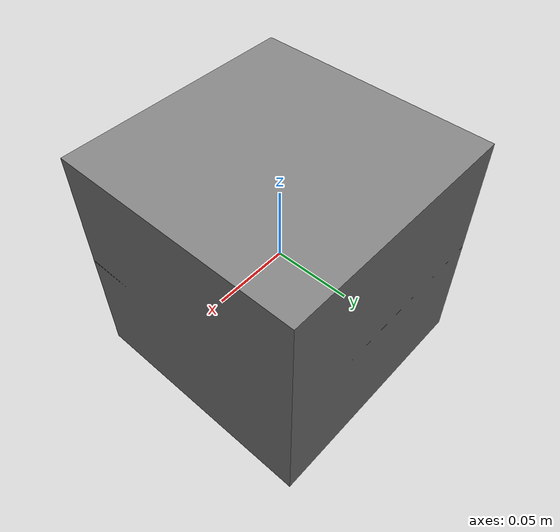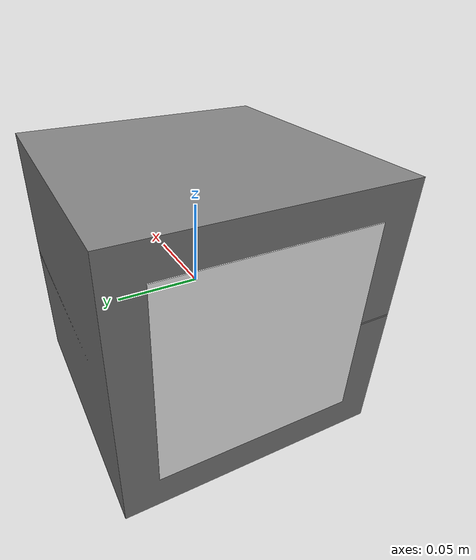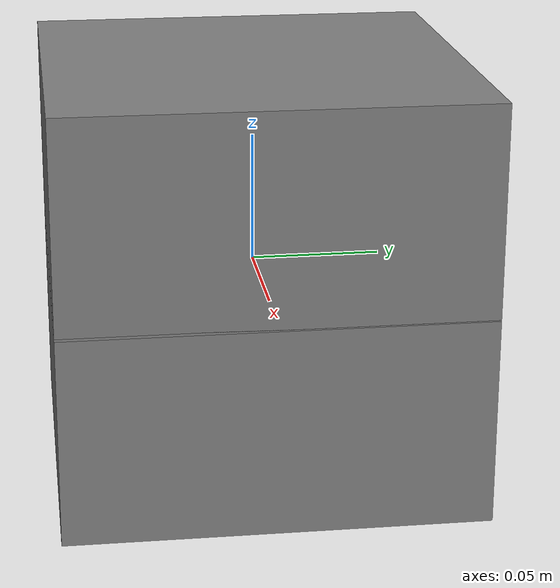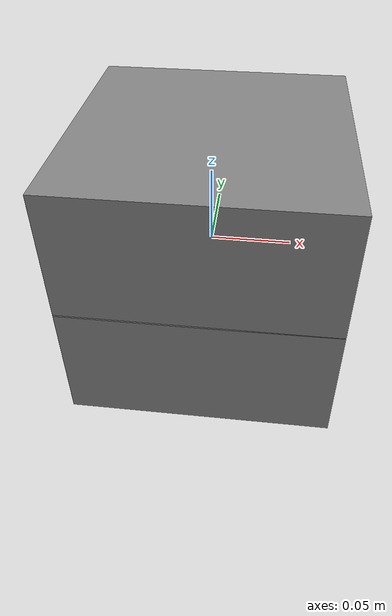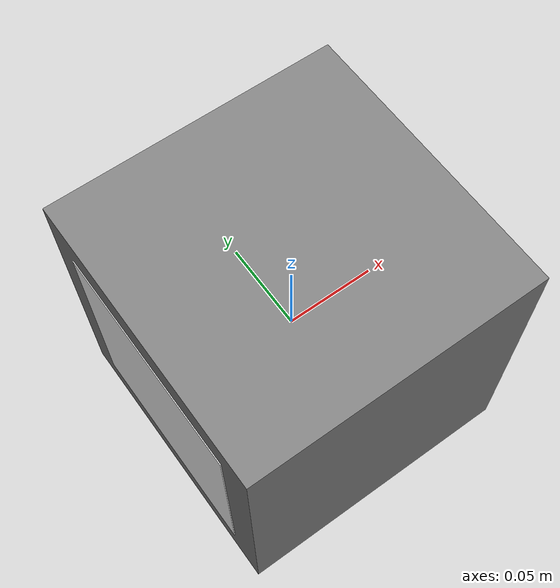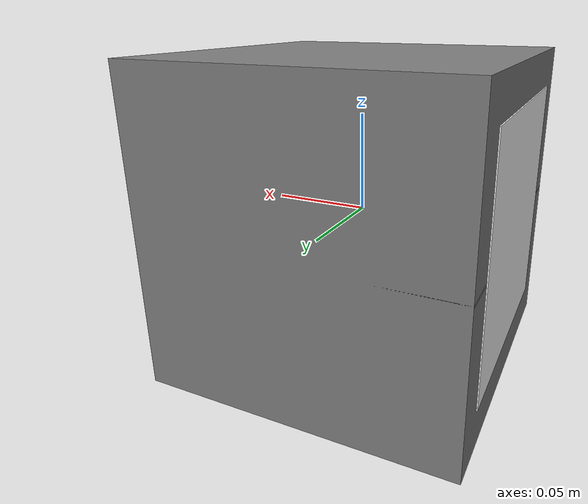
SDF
<?xml version="1.0"?>
<sdf version="1.6">
  <model name="banana_marker">
    <pose>0 0 0 0 0 0</pose>
    <link name="link">
      <!-- Base Visual (Gray Background) -->
      <visual name="base_visual">
        <pose>0 0 0 0 0 0</pose>
        <geometry>
          <box>
            <size>0.16 0.16 0.16</size>
          </box>
        </geometry>
        <material>
          <ambient>0.5 0.5 0.5 1</ambient>
          <diffuse>0.5 0.5 0.5 1</diffuse>
        </material>
      </visual>

      <!-- Gray Background Overlay (Optional) -->
      <visual name="gray_background">
        <pose>0 0 0 0 0 0</pose>
        <geometry>
          <box>
            <size>0.16 0.16 0.001</size>
          </box>
        </geometry>
        <material>
          <ambient>0.5 0.5 0.5 1</ambient>
          <diffuse>0.5 0.5 0.5 1</diffuse>
        </material>
      </visual>

      <!-- Textured Face with banana.png -->
      <visual name="textured_face">
        <pose>-0.08 0 0.001 0 0 -1.5708</pose>
        <geometry>
          <box>
            <size>0.12 0.001 0.12</size>
          </box>
        </geometry>
        <material>
          <script>
            <uri>model://object_det/materials/scripts</uri>
            <uri>model://object_det/materials/textures</uri>
            <name>Marker_banana</name>
          </script>
          <ambient>1.0 1.0 1.0 1</ambient>
          <diffuse>1.0 1.0 1.0 1</diffuse>
          <texture>
            <diffuse>model://object_det/materials/textures/truck.png</diffuse>
            <wrap_s>CLAMP</wrap_s>
            <wrap_t>CLAMP</wrap_t>
          </texture>
          <transparency>0.0</transparency> <!-- Ensure full opacity unless transparency is desired -->
        </material>
      </visual>

      <!-- Collision Geometry for Physics -->
      <collision name="collision">
        <pose>0 0 0 0 0 0</pose>
        <geometry>
          <box>
            <size>0.16 0.16 0.16</size>
          </box>
        </geometry>
      </collision>

      <!-- Inertia for the Cube -->
      <inertial>
        <mass>10.0</mass>
        <inertia>
          <ixx>1.0</ixx>
          <ixy>0.0</ixy>
          <ixz>0.0</ixz>
          <iyy>1.0</iyy>
          <iyz>0.0</iyz>
          <izz>0.5</izz>
        </inertia>
      </inertial>
    </link>
  </model>
</sdf>
